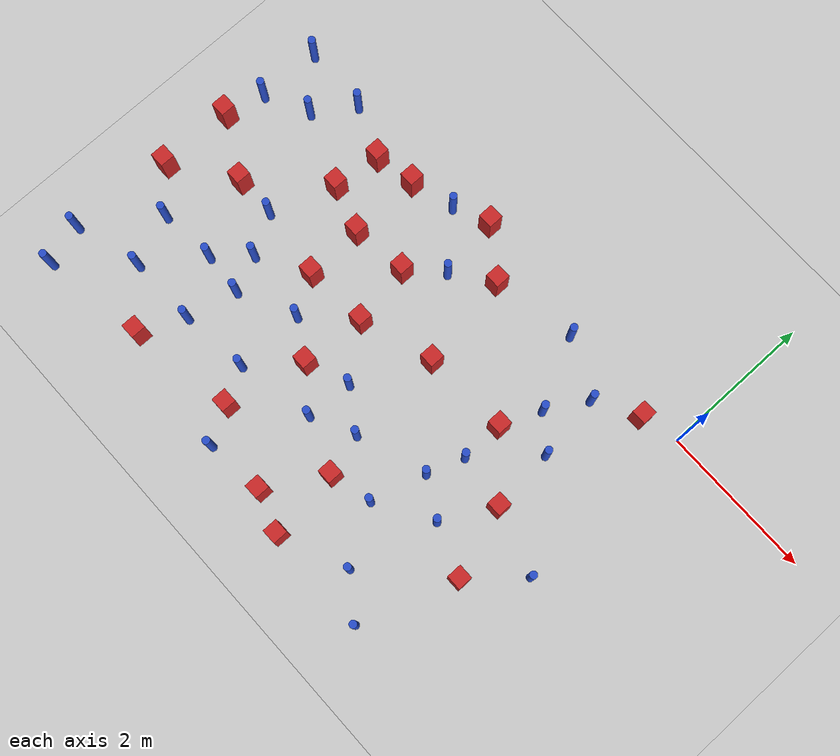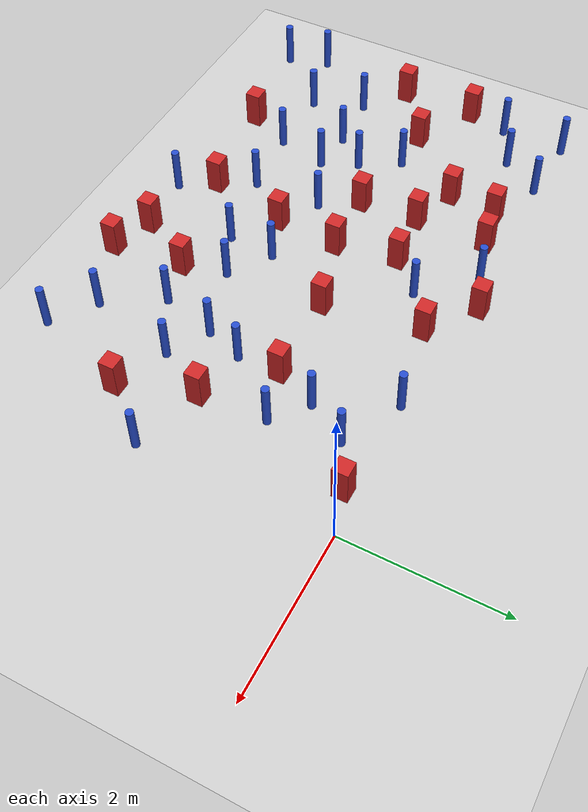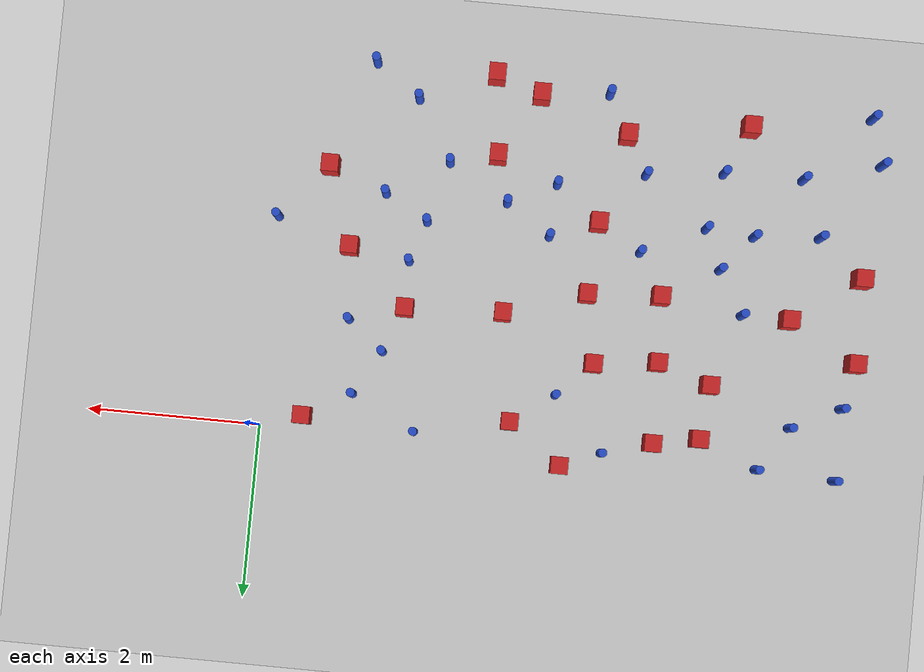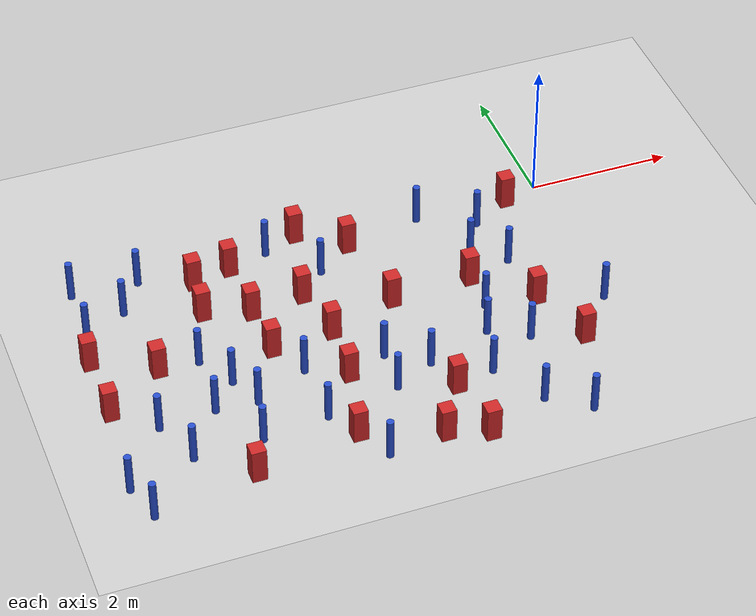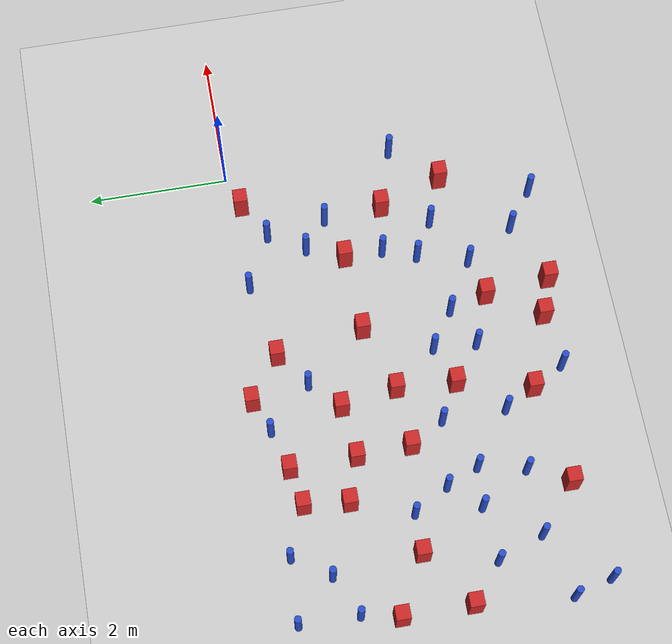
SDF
<sdf version="1.6">
 <world name="default">
  <model name="ground_plane">
   <static>1</static>
   <link name="link">
    <collision name="collision">
     <geometry><plane><normal>0 0 1</normal><size>100 100</size></plane></geometry>
     <surface><friction><ode><mu>100</mu><mu2>50</mu2></ode></friction></surface>
    </collision>
    <visual name="visual">
     <cast_shadows>0</cast_shadows>
     <geometry><plane><normal>0 0 1</normal><size>100 100</size></plane></geometry>
     <material>
      <ambient>1.0 1.0 1.0 1.0</ambient>
      <diffuse>0.8 0.8 0.8 1.0</diffuse>
      <specular>0.01 0.01 0.01 1.000000</specular>
     </material>
    </visual>
   </link>
  </model>
  <model name="square_post_obstacle1">
   <static>true</static>
   <pose>-0.557334798175 -3.08272760318 8.22691968438e-08 7.2212513382e-06 -7.54495500217e-07 2.29674213826e-05</pose>
   <link name="link">
    <pose>0 0 0.25 0 -0 0</pose>
    <inertial>
     <mass>100</mass>
     <inertia>
      <ixx>0.166667</ixx>
      <ixy>0</ixy>
      <ixz>0</ixz>
      <iyy>0.166667</iyy>
      <iyz>0</iyz>
      <izz>0.166667</izz>
     </inertia>
    </inertial>
    <collision name="collision"><geometry><box><size>.2 .2 .5</size></box></geometry></collision>
    <visual name="visual">
     <geometry><box><size>.2 .2 .5</size></box></geometry>
     <material>
      <script><name>Gazebo/Red</name><uri>file://media/materials/scripts/gazebo.material</uri></script>
     </material>
    </visual>
   </link>
  </model>
  <model name="pole_obstacle3">
   <static>true</static>
   <pose>-5.79340211494 -0.0211632586068 2.88873142074e-08 -9.90536690003e-09 4.60219948985e-07 -1.20965994965e-07</pose>
   <link name="link">
    <pose>0 0 0.3 0 -0 0</pose>
    <inertial>
     <mass>1</mass>
     <inertia><ixx>0.145833</ixx><ixy>0</ixy><ixz>0</ixz><iyy>0.145833</iyy><iyz>0</iyz><izz>0.125</izz></inertia>
    </inertial>
    <collision name="collision">
     <geometry><cylinder><radius>0.05</radius><length>.6</length></cylinder></geometry>
    </collision>
    <visual name="visual">
     <geometry><cylinder><radius>0.05</radius><length>.6</length></cylinder></geometry>
     <material>
      <script><name>Gazebo/Blue</name><uri>file://media/materials/scripts/gazebo.material</uri></script>
     </material>
    </visual>
   </link>
  </model>
  <model name="square_post_obstacle4">
   <static>true</static>
   <pose>-3.66328525411 -1.86673126845 8.22691968438e-08 7.2212513382e-06 -7.54495500217e-07 2.29674213826e-05</pose>
   <link name="link">
    <pose>0 0 0.25 0 -0 0</pose>
    <inertial>
     <mass>100</mass>
     <inertia>
      <ixx>0.166667</ixx>
      <ixy>0</ixy>
      <ixz>0</ixz>
      <iyy>0.166667</iyy>
      <iyz>0</iyz>
      <izz>0.166667</izz>
     </inertia>
    </inertial>
    <collision name="collision"><geometry><box><size>.2 .2 .5</size></box></geometry></collision>
    <visual name="visual">
     <geometry><box><size>.2 .2 .5</size></box></geometry>
     <material>
      <script><name>Gazebo/Red</name><uri>file://media/materials/scripts/gazebo.material</uri></script>
     </material>
    </visual>
   </link>
  </model>
  <model name="pole_obstacle7">
   <static>true</static>
   <pose>-1.73216548762 -2.53938346659 2.88873142074e-08 -9.90536689791e-09 4.6021994899e-07 -1.20965994959e-07</pose>
   <link name="link">
    <pose>0 0 0.3 0 -0 0</pose>
    <inertial>
     <mass>1</mass>
     <inertia><ixx>0.145833</ixx><ixy>0</ixy><ixz>0</ixz><iyy>0.145833</iyy><iyz>0</iyz><izz>0.125</izz></inertia>
    </inertial>
    <collision name="collision">
     <geometry><cylinder><radius>0.05</radius><length>.6</length></cylinder></geometry>
    </collision>
    <visual name="visual">
     <geometry><cylinder><radius>0.05</radius><length>.6</length></cylinder></geometry>
     <material>
      <script><name>Gazebo/Blue</name><uri>file://media/materials/scripts/gazebo.material</uri></script>
     </material>
    </visual>
   </link>
  </model>
  <model name="square_post_obstacle13">
   <static>true</static>
   <pose>-5.16516771168 -0.941225896846 8.22691968438e-08 7.2212513382e-06 -7.54495500217e-07 2.29674213826e-05</pose>
   <link name="link">
    <pose>0 0 0.25 0 -0 0</pose>
    <inertial>
     <mass>100</mass>
     <inertia>
      <ixx>0.166667</ixx>
      <ixy>0</ixy>
      <ixz>0</ixz>
      <iyy>0.166667</iyy>
      <iyz>0</iyz>
      <izz>0.166667</izz>
     </inertia>
    </inertial>
    <collision name="collision"><geometry><box><size>.2 .2 .5</size></box></geometry></collision>
    <visual name="visual">
     <geometry><box><size>.2 .2 .5</size></box></geometry>
     <material>
      <script><name>Gazebo/Red</name><uri>file://media/materials/scripts/gazebo.material</uri></script>
     </material>
    </visual>
   </link>
  </model>
  <model name="pole_obstacle8">
   <static>true</static>
   <pose>-1.50866007726 -3.9638408501 2.88873142074e-08 -9.90536689586e-09 4.60219948995e-07 -1.20965994956e-07</pose>
   <link name="link">
    <pose>0 0 0.3 0 -0 0</pose>
    <inertial>
     <mass>1</mass>
     <inertia><ixx>0.145833</ixx><ixy>0</ixy><ixz>0</ixz><iyy>0.145833</iyy><iyz>0</iyz><izz>0.125</izz></inertia>
    </inertial>
    <collision name="collision">
     <geometry><cylinder><radius>0.05</radius><length>.6</length></cylinder></geometry>
    </collision>
    <visual name="visual">
     <geometry><cylinder><radius>0.05</radius><length>.6</length></cylinder></geometry>
     <material>
      <script><name>Gazebo/Blue</name><uri>file://media/materials/scripts/gazebo.material</uri></script>
     </material>
    </visual>
   </link>
  </model>
  <model name="square_post_obstacle18">
   <static>true</static>
   <pose>-2.48513393565 -3.38515843492 8.22691968438e-08 7.2212513382e-06 -7.54495500217e-07 2.29674213826e-05</pose>
   <link name="link">
    <pose>0 0 0.25 0 -0 0</pose>
    <inertial>
     <mass>100</mass>
     <inertia>
      <ixx>0.166667</ixx>
      <ixy>0</ixy>
      <ixz>0</ixz>
      <iyy>0.166667</iyy>
      <iyz>0</iyz>
      <izz>0.166667</izz>
     </inertia>
    </inertial>
    <collision name="collision"><geometry><box><size>.2 .2 .5</size></box></geometry></collision>
    <visual name="visual">
     <geometry><box><size>.2 .2 .5</size></box></geometry>
     <material>
      <script><name>Gazebo/Red</name><uri>file://media/materials/scripts/gazebo.material</uri></script>
     </material>
    </visual>
   </link>
  </model>
  <model name="pole_obstacle11">
   <static>true</static>
   <pose>-0.933882481719 -1.32267744206 2.88873142074e-08 -9.90536689855e-09 4.60219948989e-07 -1.20965994962e-07</pose>
   <link name="link">
    <pose>0 0 0.3 0 -0 0</pose>
    <inertial>
     <mass>1</mass>
     <inertia><ixx>0.145833</ixx><ixy>0</ixy><ixz>0</ixz><iyy>0.145833</iyy><iyz>0</iyz><izz>0.125</izz></inertia>
    </inertial>
    <collision name="collision">
     <geometry><cylinder><radius>0.05</radius><length>.6</length></cylinder></geometry>
    </collision>
    <visual name="visual">
     <geometry><cylinder><radius>0.05</radius><length>.6</length></cylinder></geometry>
     <material>
      <script><name>Gazebo/Blue</name><uri>file://media/materials/scripts/gazebo.material</uri></script>
     </material>
    </visual>
   </link>
  </model>
  <model name="pole_obstacle25">
   <static>true</static>
   <pose>-6.79087956098 -4.21431185535 2.88873142074e-08 -9.90536690842e-09 4.60219948965e-07 -1.20965994976e-07</pose>
   <link name="link">
    <pose>0 0 0.3 0 -0 0</pose>
    <inertial>
     <mass>1</mass>
     <inertia><ixx>0.145833</ixx><ixy>0</ixy><ixz>0</ixz><iyy>0.145833</iyy><iyz>0</iyz><izz>0.125</izz></inertia>
    </inertial>
    <collision name="collision">
     <geometry><cylinder><radius>0.05</radius><length>.6</length></cylinder></geometry>
    </collision>
    <visual name="visual">
     <geometry><cylinder><radius>0.05</radius><length>.6</length></cylinder></geometry>
     <material>
      <script><name>Gazebo/Blue</name><uri>file://media/materials/scripts/gazebo.material</uri></script>
     </material>
    </visual>
   </link>
  </model>
  <model name="pole_obstacle27">
   <static>true</static>
   <pose>-5.17617299652 -2.29358362439 2.88873142074e-08 -9.90536690245e-09 4.6021994898e-07 -1.20965994966e-07</pose>
   <link name="link">
    <pose>0 0 0.3 0 -0 0</pose>
    <inertial>
     <mass>1</mass>
     <inertia><ixx>0.145833</ixx><ixy>0</ixy><ixz>0</ixz><iyy>0.145833</iyy><iyz>0</iyz><izz>0.125</izz></inertia>
    </inertial>
    <collision name="collision">
     <geometry><cylinder><radius>0.05</radius><length>.6</length></cylinder></geometry>
    </collision>
    <visual name="visual">
     <geometry><cylinder><radius>0.05</radius><length>.6</length></cylinder></geometry>
     <material>
      <script><name>Gazebo/Blue</name><uri>file://media/materials/scripts/gazebo.material</uri></script>
     </material>
    </visual>
   </link>
  </model>
  <model name="pole_obstacle30">
   <static>true</static>
   <pose>-6.71576771342 -0.81321255407 2.88873142074e-08 -9.90536689837e-09 4.60219948989e-07 -1.2096599496e-07</pose>
   <link name="link">
    <pose>0 0 0.3 0 -0 0</pose>
    <inertial>
     <mass>1</mass>
     <inertia><ixx>0.145833</ixx><ixy>0</ixy><ixz>0</ixz><iyy>0.145833</iyy><iyz>0</iyz><izz>0.125</izz></inertia>
    </inertial>
    <collision name="collision">
     <geometry><cylinder><radius>0.05</radius><length>.6</length></cylinder></geometry>
    </collision>
    <visual name="visual">
     <geometry><cylinder><radius>0.05</radius><length>.6</length></cylinder></geometry>
     <material>
      <script><name>Gazebo/Blue</name><uri>file://media/materials/scripts/gazebo.material</uri></script>
     </material>
    </visual>
   </link>
  </model>
  <model name="square_post_obstacle39">
   <static>true</static>
   <pose>-2.38749320823 -4.31851192225 8.22691968438e-08 7.2212513382e-06 -7.54495500217e-07 2.29674213826e-05</pose>
   <link name="link">
    <pose>0 0 0.25 0 -0 0</pose>
    <inertial>
     <mass>100</mass>
     <inertia>
      <ixx>0.166667</ixx>
      <ixy>0</ixy>
      <ixz>0</ixz>
      <iyy>0.166667</iyy>
      <iyz>0</iyz>
      <izz>0.166667</izz>
     </inertia>
    </inertial>
    <collision name="collision"><geometry><box><size>.2 .2 .5</size></box></geometry></collision>
    <visual name="visual">
     <geometry><box><size>.2 .2 .5</size></box></geometry>
     <material>
      <script><name>Gazebo/Red</name><uri>file://media/materials/scripts/gazebo.material</uri></script>
     </material>
    </visual>
   </link>
  </model>
  <model name="pole_obstacle42">
   <static>true</static>
   <pose>-5.47425082224 -1.78958168003 2.88873142074e-08 -9.90536689445e-09 4.60219948999e-07 -1.20965994956e-07</pose>
   <link name="link">
    <pose>0 0 0.3 0 -0 0</pose>
    <inertial>
     <mass>1</mass>
     <inertia><ixx>0.145833</ixx><ixy>0</ixy><ixz>0</ixz><iyy>0.145833</iyy><iyz>0</iyz><izz>0.125</izz></inertia>
    </inertial>
    <collision name="collision">
     <geometry><cylinder><radius>0.05</radius><length>.6</length></cylinder></geometry>
    </collision>
    <visual name="visual">
     <geometry><cylinder><radius>0.05</radius><length>.6</length></cylinder></geometry>
     <material>
      <script><name>Gazebo/Blue</name><uri>file://media/materials/scripts/gazebo.material</uri></script>
     </material>
    </visual>
   </link>
  </model>
  <model name="square_post_obstacle40">
   <static>true</static>
   <pose>-4.54519862014 -1.14823949798 8.22691968438e-08 7.2212513382e-06 -7.54495500217e-07 2.29674213826e-05</pose>
   <link name="link">
    <pose>0 0 0.25 0 -0 0</pose>
    <inertial>
     <mass>100</mass>
     <inertia>
      <ixx>0.166667</ixx>
      <ixy>0</ixy>
      <ixz>0</ixz>
      <iyy>0.166667</iyy>
      <iyz>0</iyz>
      <izz>0.166667</izz>
     </inertia>
    </inertial>
    <collision name="collision"><geometry><box><size>.2 .2 .5</size></box></geometry></collision>
    <visual name="visual">
     <geometry><box><size>.2 .2 .5</size></box></geometry>
     <material>
      <script><name>Gazebo/Red</name><uri>file://media/materials/scripts/gazebo.material</uri></script>
     </material>
    </visual>
   </link>
  </model>
  <model name="pole_obstacle45">
   <static>true</static>
   <pose>-1.05352468979 -0.463271751504 2.88873142074e-08 -9.90536689816e-09 4.6021994899e-07 -1.2096599496e-07</pose>
   <link name="link">
    <pose>0 0 0.3 0 -0 0</pose>
    <inertial>
     <mass>1</mass>
     <inertia><ixx>0.145833</ixx><ixy>0</ixy><ixz>0</ixz><iyy>0.145833</iyy><iyz>0</iyz><izz>0.125</izz></inertia>
    </inertial>
    <collision name="collision">
     <geometry><cylinder><radius>0.05</radius><length>.6</length></cylinder></geometry>
    </collision>
    <visual name="visual">
     <geometry><cylinder><radius>0.05</radius><length>.6</length></cylinder></geometry>
     <material>
      <script><name>Gazebo/Blue</name><uri>file://media/materials/scripts/gazebo.material</uri></script>
     </material>
    </visual>
   </link>
  </model>
  <model name="square_post_obstacle44">
   <static>true</static>
   <pose>-2.9006235229 -0.307369105008 8.22691968438e-08 7.2212513382e-06 -7.54495500217e-07 2.29674213826e-05</pose>
   <link name="link">
    <pose>0 0 0.25 0 -0 0</pose>
    <inertial>
     <mass>100</mass>
     <inertia>
      <ixx>0.166667</ixx>
      <ixy>0</ixy>
      <ixz>0</ixz>
      <iyy>0.166667</iyy>
      <iyz>0</iyz>
      <izz>0.166667</izz>
     </inertia>
    </inertial>
    <collision name="collision"><geometry><box><size>.2 .2 .5</size></box></geometry></collision>
    <visual name="visual">
     <geometry><box><size>.2 .2 .5</size></box></geometry>
     <material>
      <script><name>Gazebo/Red</name><uri>file://media/materials/scripts/gazebo.material</uri></script>
     </material>
    </visual>
   </link>
  </model>
  <model name="pole_obstacle62">
   <static>true</static>
   <pose>-1.22507534285 -2.82603380804 2.88873142074e-08 -9.90536689791e-09 4.6021994899e-07 -1.20965994959e-07</pose>
   <link name="link">
    <pose>0 0 0.3 0 -0 0</pose>
    <inertial>
     <mass>1</mass>
     <inertia><ixx>0.145833</ixx><ixy>0</ixy><ixz>0</ixz><iyy>0.145833</iyy><iyz>0</iyz><izz>0.125</izz></inertia>
    </inertial>
    <collision name="collision">
     <geometry><cylinder><radius>0.05</radius><length>.6</length></cylinder></geometry>
    </collision>
    <visual name="visual">
     <geometry><cylinder><radius>0.05</radius><length>.6</length></cylinder></geometry>
     <material>
      <script><name>Gazebo/Blue</name><uri>file://media/materials/scripts/gazebo.material</uri></script>
     </material>
    </visual>
   </link>
  </model>
  <model name="pole_obstacle63">
   <static>true</static>
   <pose>-2.64184245672 -2.84743970709 2.88873142074e-08 -9.90536690232e-09 4.6021994898e-07 -1.20965994968e-07</pose>
   <link name="link">
    <pose>0 0 0.3 0 -0 0</pose>
    <inertial>
     <mass>1</mass>
     <inertia><ixx>0.145833</ixx><ixy>0</ixy><ixz>0</ixz><iyy>0.145833</iyy><iyz>0</iyz><izz>0.125</izz></inertia>
    </inertial>
    <collision name="collision">
     <geometry><cylinder><radius>0.05</radius><length>.6</length></cylinder></geometry>
    </collision>
    <visual name="visual">
     <geometry><cylinder><radius>0.05</radius><length>.6</length></cylinder></geometry>
     <material>
      <script><name>Gazebo/Blue</name><uri>file://media/materials/scripts/gazebo.material</uri></script>
     </material>
    </visual>
   </link>
  </model>
  <model name="square_post_obstacle68">
   <static>true</static>
   <pose>-5.0982100184 -0.310912671114 8.22691968438e-08 7.2212513382e-06 -7.54495500217e-07 2.29674213826e-05</pose>
   <link name="link">
    <pose>0 0 0.25 0 -0 0</pose>
    <inertial>
     <mass>100</mass>
     <inertia>
      <ixx>0.166667</ixx>
      <ixy>0</ixy>
      <ixz>0</ixz>
      <iyy>0.166667</iyy>
      <iyz>0</iyz>
      <izz>0.166667</izz>
     </inertia>
    </inertial>
    <collision name="collision"><geometry><box><size>.2 .2 .5</size></box></geometry></collision>
    <visual name="visual">
     <geometry><box><size>.2 .2 .5</size></box></geometry>
     <material>
      <script><name>Gazebo/Red</name><uri>file://media/materials/scripts/gazebo.material</uri></script>
     </material>
    </visual>
   </link>
  </model>
  <model name="pole_obstacle68">
   <static>true</static>
   <pose>-3.98958934895 -0.0448235168982 2.88873142074e-08 -9.90536687596e-09 4.60219949041e-07 -1.20965994939e-07</pose>
   <link name="link">
    <pose>0 0 0.3 0 -0 0</pose>
    <inertial>
     <mass>1</mass>
     <inertia><ixx>0.145833</ixx><ixy>0</ixy><ixz>0</ixz><iyy>0.145833</iyy><iyz>0</iyz><izz>0.125</izz></inertia>
    </inertial>
    <collision name="collision">
     <geometry><cylinder><radius>0.05</radius><length>.6</length></cylinder></geometry>
    </collision>
    <visual name="visual">
     <geometry><cylinder><radius>0.05</radius><length>.6</length></cylinder></geometry>
     <material>
      <script><name>Gazebo/Blue</name><uri>file://media/materials/scripts/gazebo.material</uri></script>
     </material>
    </visual>
   </link>
  </model>
  <model name="square_post_obstacle76">
   <static>true</static>
   <pose>-4.51403401809 -1.91826936203 8.22691968438e-08 7.22125133819e-06 -7.54495500217e-07 2.29674213826e-05</pose>
   <link name="link">
    <pose>0 0 0.25 0 -0 0</pose>
    <inertial>
     <mass>100</mass>
     <inertia>
      <ixx>0.166667</ixx>
      <ixy>0</ixy>
      <ixz>0</ixz>
      <iyy>0.166667</iyy>
      <iyz>0</iyz>
      <izz>0.166667</izz>
     </inertia>
    </inertial>
    <collision name="collision"><geometry><box><size>.2 .2 .5</size></box></geometry></collision>
    <visual name="visual">
     <geometry><box><size>.2 .2 .5</size></box></geometry>
     <material>
      <script><name>Gazebo/Red</name><uri>file://media/materials/scripts/gazebo.material</uri></script>
     </material>
    </visual>
   </link>
  </model>
  <model name="pole_obstacle74">
   <static>true</static>
   <pose>-1.35297878191 -0.981391345299 2.88873142074e-08 -9.90536689879e-09 4.60219948988e-07 -1.20965994961e-07</pose>
   <link name="link">
    <pose>0 0 0.3 0 -0 0</pose>
    <inertial>
     <mass>1</mass>
     <inertia><ixx>0.145833</ixx><ixy>0</ixy><ixz>0</ixz><iyy>0.145833</iyy><iyz>0</iyz><izz>0.125</izz></inertia>
    </inertial>
    <collision name="collision">
     <geometry><cylinder><radius>0.05</radius><length>.6</length></cylinder></geometry>
    </collision>
    <visual name="visual">
     <geometry><cylinder><radius>0.05</radius><length>.6</length></cylinder></geometry>
     <material>
      <script><name>Gazebo/Blue</name><uri>file://media/materials/scripts/gazebo.material</uri></script>
     </material>
    </visual>
   </link>
  </model>
  <model name="pole_obstacle78">
   <static>true</static>
   <pose>-6.13635708358 -0.536352926298 2.88873142074e-08 -9.90536689968e-09 4.60219948986e-07 -1.20965994963e-07</pose>
   <link name="link">
    <pose>0 0 0.3 0 -0 0</pose>
    <inertial>
     <mass>1</mass>
     <inertia><ixx>0.145833</ixx><ixy>0</ixy><ixz>0</ixz><iyy>0.145833</iyy><iyz>0</iyz><izz>0.125</izz></inertia>
    </inertial>
    <collision name="collision">
     <geometry><cylinder><radius>0.05</radius><length>.6</length></cylinder></geometry>
    </collision>
    <visual name="visual">
     <geometry><cylinder><radius>0.05</radius><length>.6</length></cylinder></geometry>
     <material>
      <script><name>Gazebo/Blue</name><uri>file://media/materials/scripts/gazebo.material</uri></script>
     </material>
    </visual>
   </link>
  </model>
  <model name="pole_obstacle90">
   <static>true</static>
   <pose>-4.23481060397 -2.41242656305 2.88873142074e-08 -9.90536690245e-09 4.6021994898e-07 -1.20965994966e-07</pose>
   <link name="link">
    <pose>0 0 0.3 0 -0 0</pose>
    <inertial>
     <mass>1</mass>
     <inertia><ixx>0.145833</ixx><ixy>0</ixy><ixz>0</ixz><iyy>0.145833</iyy><iyz>0</iyz><izz>0.125</izz></inertia>
    </inertial>
    <collision name="collision">
     <geometry><cylinder><radius>0.05</radius><length>.6</length></cylinder></geometry>
    </collision>
    <visual name="visual">
     <geometry><cylinder><radius>0.05</radius><length>.6</length></cylinder></geometry>
     <material>
      <script><name>Gazebo/Blue</name><uri>file://media/materials/scripts/gazebo.material</uri></script>
     </material>
    </visual>
   </link>
  </model>
  <model name="pole_obstacle92">
   <static>true</static>
   <pose>-6.94735927483 -3.67951070838 2.88873142074e-08 -9.90536690245e-09 4.6021994898e-07 -1.20965994966e-07</pose>
   <link name="link">
    <pose>0 0 0.3 0 -0 0</pose>
    <inertial>
     <mass>1</mass>
     <inertia><ixx>0.145833</ixx><ixy>0</ixy><ixz>0</ixz><iyy>0.145833</iyy><iyz>0</iyz><izz>0.125</izz></inertia>
    </inertial>
    <collision name="collision">
     <geometry><cylinder><radius>0.05</radius><length>.6</length></cylinder></geometry>
    </collision>
    <visual name="visual">
     <geometry><cylinder><radius>0.05</radius><length>.6</length></cylinder></geometry>
     <material>
      <script><name>Gazebo/Blue</name><uri>file://media/materials/scripts/gazebo.material</uri></script>
     </material>
    </visual>
   </link>
  </model>
  <model name="pole_obstacle93">
   <static>true</static>
   <pose>-0.0023775373005 -2.44407386912 2.88873142074e-08 -9.90536689491e-09 4.60219948997e-07 -1.20965994954e-07</pose>
   <link name="link">
    <pose>0 0 0.3 0 -0 0</pose>
    <inertial>
     <mass>1</mass>
     <inertia><ixx>0.145833</ixx><ixy>0</ixy><ixz>0</ixz><iyy>0.145833</iyy><iyz>0</iyz><izz>0.125</izz></inertia>
    </inertial>
    <collision name="collision">
     <geometry><cylinder><radius>0.05</radius><length>.6</length></cylinder></geometry>
    </collision>
    <visual name="visual">
     <geometry><cylinder><radius>0.05</radius><length>.6</length></cylinder></geometry>
     <material>
      <script><name>Gazebo/Blue</name><uri>file://media/materials/scripts/gazebo.material</uri></script>
     </material>
    </visual>
   </link>
  </model>
  <model name="pole_obstacle98">
   <static>true</static>
   <pose>-4.97488637153 -2.75681319711 2.88873142074e-08 -9.90536690245e-09 4.6021994898e-07 -1.20965994966e-07</pose>
   <link name="link">
    <pose>0 0 0.3 0 -0 0</pose>
    <inertial>
     <mass>1</mass>
     <inertia><ixx>0.145833</ixx><ixy>0</ixy><ixz>0</ixz><iyy>0.145833</iyy><iyz>0</iyz><izz>0.125</izz></inertia>
    </inertial>
    <collision name="collision">
     <geometry><cylinder><radius>0.05</radius><length>.6</length></cylinder></geometry>
    </collision>
    <visual name="visual">
     <geometry><cylinder><radius>0.05</radius><length>.6</length></cylinder></geometry>
     <material>
      <script><name>Gazebo/Blue</name><uri>file://media/materials/scripts/gazebo.material</uri></script>
     </material>
    </visual>
   </link>
  </model>
  <model name="pole_obstacle103">
   <static>true</static>
   <pose>-5.53806756953 -2.71326206359 2.88873142074e-08 -9.90536690245e-09 4.6021994898e-07 -1.20965994966e-07</pose>
   <link name="link">
    <pose>0 0 0.3 0 -0 0</pose>
    <inertial>
     <mass>1</mass>
     <inertia><ixx>0.145833</ixx><ixy>0</ixy><ixz>0</ixz><iyy>0.145833</iyy><iyz>0</iyz><izz>0.125</izz></inertia>
    </inertial>
    <collision name="collision">
     <geometry><cylinder><radius>0.05</radius><length>.6</length></cylinder></geometry>
    </collision>
    <visual name="visual">
     <geometry><cylinder><radius>0.05</radius><length>.6</length></cylinder></geometry>
     <material>
      <script><name>Gazebo/Blue</name><uri>file://media/materials/scripts/gazebo.material</uri></script>
     </material>
    </visual>
   </link>
  </model>
  <model name="pole_obstacle108">
   <static>true</static>
   <pose>-4.22188376828 -3.32014860063 2.88873142074e-08 -9.90536690245e-09 4.6021994898e-07 -1.20965994966e-07</pose>
   <link name="link">
    <pose>0 0 0.3 0 -0 0</pose>
    <inertial>
     <mass>1</mass>
     <inertia><ixx>0.145833</ixx><ixy>0</ixy><ixz>0</ixz><iyy>0.145833</iyy><iyz>0</iyz><izz>0.125</izz></inertia>
    </inertial>
    <collision name="collision">
     <geometry><cylinder><radius>0.05</radius><length>.6</length></cylinder></geometry>
    </collision>
    <visual name="visual">
     <geometry><cylinder><radius>0.05</radius><length>.6</length></cylinder></geometry>
     <material>
      <script><name>Gazebo/Blue</name><uri>file://media/materials/scripts/gazebo.material</uri></script>
     </material>
    </visual>
   </link>
  </model>
  <model name="square_post_obstacle98">
   <static>true</static>
   <pose>-0.507067521289 -0.158723331687 8.22691968438e-08 7.2212513382e-06 -7.54495500217e-07 2.29674213826e-05</pose>
   <link name="link">
    <pose>0 0 0.25 0 -0 0</pose>
    <inertial>
     <mass>100</mass>
     <inertia>
      <ixx>0.166667</ixx>
      <ixy>0</ixy>
      <ixz>0</ixz>
      <iyy>0.166667</iyy>
      <iyz>0</iyz>
      <izz>0.166667</izz>
     </inertia>
    </inertial>
    <collision name="collision"><geometry><box><size>.2 .2 .5</size></box></geometry></collision>
    <visual name="visual">
     <geometry><box><size>.2 .2 .5</size></box></geometry>
     <material>
      <script><name>Gazebo/Red</name><uri>file://media/materials/scripts/gazebo.material</uri></script>
     </material>
    </visual>
   </link>
  </model>
  <model name="pole_obstacle110">
   <static>true</static>
   <pose>-3.71933847198 -4.22281411467 2.88873142074e-08 -9.90536692062e-09 4.60219948937e-07 -1.20965994985e-07</pose>
   <link name="link">
    <pose>0 0 0.3 0 -0 0</pose>
    <inertial>
     <mass>1</mass>
     <inertia><ixx>0.145833</ixx><ixy>0</ixy><ixz>0</ixz><iyy>0.145833</iyy><iyz>0</iyz><izz>0.125</izz></inertia>
    </inertial>
    <collision name="collision">
     <geometry><cylinder><radius>0.05</radius><length>.6</length></cylinder></geometry>
    </collision>
    <visual name="visual">
     <geometry><cylinder><radius>0.05</radius><length>.6</length></cylinder></geometry>
     <material>
      <script><name>Gazebo/Blue</name><uri>file://media/materials/scripts/gazebo.material</uri></script>
     </material>
    </visual>
   </link>
  </model>
  <model name="square_post_obstacle115">
   <static>true</static>
   <pose>-3.72056378685 -2.70702718772 8.22691968438e-08 7.2212513382e-06 -7.54495500217e-07 2.29674213826e-05</pose>
   <link name="link">
    <pose>0 0 0.25 0 -0 0</pose>
    <inertial>
     <mass>100</mass>
     <inertia>
      <ixx>0.166667</ixx>
      <ixy>0</ixy>
      <ixz>0</ixz>
      <iyy>0.166667</iyy>
      <iyz>0</iyz>
      <izz>0.166667</izz>
     </inertia>
    </inertial>
    <collision name="collision"><geometry><box><size>.2 .2 .5</size></box></geometry></collision>
    <visual name="visual">
     <geometry><box><size>.2 .2 .5</size></box></geometry>
     <material>
      <script><name>Gazebo/Red</name><uri>file://media/materials/scripts/gazebo.material</uri></script>
     </material>
    </visual>
   </link>
  </model>
  <model name="pole_obstacle134">
   <static>true</static>
   <pose>-1.56536986794 -2.06009606657 2.88873142074e-08 -9.90536689791e-09 4.6021994899e-07 -1.20965994959e-07</pose>
   <link name="link">
    <pose>0 0 0.3 0 -0 0</pose>
    <inertial>
     <mass>1</mass>
     <inertia><ixx>0.145833</ixx><ixy>0</ixy><ixz>0</ixz><iyy>0.145833</iyy><iyz>0</iyz><izz>0.125</izz></inertia>
    </inertial>
    <collision name="collision">
     <geometry><cylinder><radius>0.05</radius><length>.6</length></cylinder></geometry>
    </collision>
    <visual name="visual">
     <geometry><cylinder><radius>0.05</radius><length>.6</length></cylinder></geometry>
     <material>
      <script><name>Gazebo/Blue</name><uri>file://media/materials/scripts/gazebo.material</uri></script>
     </material>
    </visual>
   </link>
  </model>
  <model name="square_post_obstacle118">
   <static>true</static>
   <pose>-5.38462434512 -3.98004787682 8.22691968438e-08 7.2212513382e-06 -7.54495500217e-07 2.29674213826e-05</pose>
   <link name="link">
    <pose>0 0 0.25 0 -0 0</pose>
    <inertial>
     <mass>100</mass>
     <inertia>
      <ixx>0.166667</ixx>
      <ixy>0</ixy>
      <ixz>0</ixz>
      <iyy>0.166667</iyy>
      <iyz>0</iyz>
      <izz>0.166667</izz>
     </inertia>
    </inertial>
    <collision name="collision"><geometry><box><size>.2 .2 .5</size></box></geometry></collision>
    <visual name="visual">
     <geometry><box><size>.2 .2 .5</size></box></geometry>
     <material>
      <script><name>Gazebo/Red</name><uri>file://media/materials/scripts/gazebo.material</uri></script>
     </material>
    </visual>
   </link>
  </model>
  <model name="pole_obstacle140">
   <static>true</static>
   <pose>-3.16533603942 -2.50099025938 2.88873142074e-08 -9.90536690232e-09 4.6021994898e-07 -1.20965994968e-07</pose>
   <link name="link">
    <pose>0 0 0.3 0 -0 0</pose>
    <inertial>
     <mass>1</mass>
     <inertia><ixx>0.145833</ixx><ixy>0</ixy><ixz>0</ixz><iyy>0.145833</iyy><iyz>0</iyz><izz>0.125</izz></inertia>
    </inertial>
    <collision name="collision">
     <geometry><cylinder><radius>0.05</radius><length>.6</length></cylinder></geometry>
    </collision>
    <visual name="visual">
     <geometry><cylinder><radius>0.05</radius><length>.6</length></cylinder></geometry>
     <material>
      <script><name>Gazebo/Blue</name><uri>file://media/materials/scripts/gazebo.material</uri></script>
     </material>
    </visual>
   </link>
  </model>
  <model name="square_post_obstacle129">
   <static>true</static>
   <pose>-6.02129443912 -1.779590781 8.22691968438e-08 7.2212513382e-06 -7.54495500217e-07 2.29674213826e-05</pose>
   <link name="link">
    <pose>0 0 0.25 0 -0 0</pose>
    <inertial>
     <mass>100</mass>
     <inertia>
      <ixx>0.166667</ixx>
      <ixy>0</ixy>
      <ixz>0</ixz>
      <iyy>0.166667</iyy>
      <iyz>0</iyz>
      <izz>0.166667</izz>
     </inertia>
    </inertial>
    <collision name="collision"><geometry><box><size>.2 .2 .5</size></box></geometry></collision>
    <visual name="visual">
     <geometry><box><size>.2 .2 .5</size></box></geometry>
     <material>
      <script><name>Gazebo/Red</name><uri>file://media/materials/scripts/gazebo.material</uri></script>
     </material>
    </visual>
   </link>
  </model>
  <model name="pole_obstacle142">
   <static>true</static>
   <pose>-0.980403988939 -4.34415106666 2.88873142074e-08 -9.90536689644e-09 4.60219948994e-07 -1.20965994957e-07</pose>
   <link name="link">
    <pose>0 0 0.3 0 -0 0</pose>
    <inertial>
     <mass>1</mass>
     <inertia><ixx>0.145833</ixx><ixy>0</ixy><ixz>0</ixz><iyy>0.145833</iyy><iyz>0</iyz><izz>0.125</izz></inertia>
    </inertial>
    <collision name="collision">
     <geometry><cylinder><radius>0.05</radius><length>.6</length></cylinder></geometry>
    </collision>
    <visual name="visual">
     <geometry><cylinder><radius>0.05</radius><length>.6</length></cylinder></geometry>
     <material>
      <script><name>Gazebo/Blue</name><uri>file://media/materials/scripts/gazebo.material</uri></script>
     </material>
    </visual>
   </link>
  </model>
  <model name="square_post_obstacle133">
   <static>true</static>
   <pose>-3.80280747398 -1.06571971139 8.22691968438e-08 7.2212513382e-06 -7.54495500217e-07 2.29674213826e-05</pose>
   <link name="link">
    <pose>0 0 0.25 0 -0 0</pose>
    <inertial>
     <mass>100</mass>
     <inertia>
      <ixx>0.166667</ixx>
      <ixy>0</ixy>
      <ixz>0</ixz>
      <iyy>0.166667</iyy>
      <iyz>0</iyz>
      <izz>0.166667</izz>
     </inertia>
    </inertial>
    <collision name="collision"><geometry><box><size>.2 .2 .5</size></box></geometry></collision>
    <visual name="visual">
     <geometry><box><size>.2 .2 .5</size></box></geometry>
     <material>
      <script><name>Gazebo/Red</name><uri>file://media/materials/scripts/gazebo.material</uri></script>
     </material>
    </visual>
   </link>
  </model>
  <model name="pole_obstacle144">
   <static>true</static>
   <pose>-3.20247687455 -3.114272189 2.88873142074e-08 -9.90536690232e-09 4.6021994898e-07 -1.20965994968e-07</pose>
   <link name="link">
    <pose>0 0 0.3 0 -0 0</pose>
    <inertial>
     <mass>1</mass>
     <inertia><ixx>0.145833</ixx><ixy>0</ixy><ixz>0</ixz><iyy>0.145833</iyy><iyz>0</iyz><izz>0.125</izz></inertia>
    </inertial>
    <collision name="collision">
     <geometry><cylinder><radius>0.05</radius><length>.6</length></cylinder></geometry>
    </collision>
    <visual name="visual">
     <geometry><cylinder><radius>0.05</radius><length>.6</length></cylinder></geometry>
     <material>
      <script><name>Gazebo/Blue</name><uri>file://media/materials/scripts/gazebo.material</uri></script>
     </material>
    </visual>
   </link>
  </model>
  <model name="square_post_obstacle139">
   <static>true</static>
   <pose>-2.70785112148 -1.55977963191 8.22691968438e-08 7.2212513382e-06 -7.54495500217e-07 2.29674213826e-05</pose>
   <link name="link">
    <pose>0 0 0.25 0 -0 0</pose>
    <inertial>
     <mass>100</mass>
     <inertia>
      <ixx>0.166667</ixx>
      <ixy>0</ixy>
      <ixz>0</ixz>
      <iyy>0.166667</iyy>
      <iyz>0</iyz>
      <izz>0.166667</izz>
     </inertia>
    </inertial>
    <collision name="collision"><geometry><box><size>.2 .2 .5</size></box></geometry></collision>
    <visual name="visual">
     <geometry><box><size>.2 .2 .5</size></box></geometry>
     <material>
      <script><name>Gazebo/Red</name><uri>file://media/materials/scripts/gazebo.material</uri></script>
     </material>
    </visual>
   </link>
  </model>
  <model name="pole_obstacle154">
   <static>true</static>
   <pose>-6.30342048654 -2.77290643738 2.88873142074e-08 -9.90536690245e-09 4.6021994898e-07 -1.20965994966e-07</pose>
   <link name="link">
    <pose>0 0 0.3 0 -0 0</pose>
    <inertial>
     <mass>1</mass>
     <inertia><ixx>0.145833</ixx><ixy>0</ixy><ixz>0</ixz><iyy>0.145833</iyy><iyz>0</iyz><izz>0.125</izz></inertia>
    </inertial>
    <collision name="collision">
     <geometry><cylinder><radius>0.05</radius><length>.6</length></cylinder></geometry>
    </collision>
    <visual name="visual">
     <geometry><cylinder><radius>0.05</radius><length>.6</length></cylinder></geometry>
     <material>
      <script><name>Gazebo/Blue</name><uri>file://media/materials/scripts/gazebo.material</uri></script>
     </material>
    </visual>
   </link>
  </model>
  <model name="square_post_obstacle146">
   <static>true</static>
   <pose>-4.56249646331 -0.21192598918 8.22691968438e-08 7.2212513382e-06 -7.54495500217e-07 2.29674213826e-05</pose>
   <link name="link">
    <pose>0 0 0.25 0 -0 0</pose>
    <inertial>
     <mass>100</mass>
     <inertia>
      <ixx>0.166667</ixx>
      <ixy>0</ixy>
      <ixz>0</ixz>
      <iyy>0.166667</iyy>
      <iyz>0</iyz>
      <izz>0.166667</izz>
     </inertia>
    </inertial>
    <collision name="collision"><geometry><box><size>.2 .2 .5</size></box></geometry></collision>
    <visual name="visual">
     <geometry><box><size>.2 .2 .5</size></box></geometry>
     <material>
      <script><name>Gazebo/Red</name><uri>file://media/materials/scripts/gazebo.material</uri></script>
     </material>
    </visual>
   </link>
  </model>
  <model name="pole_obstacle166">
   <static>true</static>
   <pose>-6.05032775223 -3.43295865763 2.88873142074e-08 -9.90536690245e-09 4.6021994898e-07 -1.20965994966e-07</pose>
   <link name="link">
    <pose>0 0 0.3 0 -0 0</pose>
    <inertial>
     <mass>1</mass>
     <inertia><ixx>0.145833</ixx><ixy>0</ixy><ixz>0</ixz><iyy>0.145833</iyy><iyz>0</iyz><izz>0.125</izz></inertia>
    </inertial>
    <collision name="collision">
     <geometry><cylinder><radius>0.05</radius><length>.6</length></cylinder></geometry>
    </collision>
    <visual name="visual">
     <geometry><cylinder><radius>0.05</radius><length>.6</length></cylinder></geometry>
     <material>
      <script><name>Gazebo/Blue</name><uri>file://media/materials/scripts/gazebo.material</uri></script>
     </material>
    </visual>
   </link>
  </model>
  <model name="square_post_obstacle160">
   <static>true</static>
   <pose>-3.5144923368 0.142419434585 8.22691968438e-08 7.2212513382e-06 -7.54495500217e-07 2.29674213826e-05</pose>
   <link name="link">
    <pose>0 0 0.25 0 -0 0</pose>
    <inertial>
     <mass>100</mass>
     <inertia>
      <ixx>0.166667</ixx>
      <ixy>0</ixy>
      <ixz>0</ixz>
      <iyy>0.166667</iyy>
      <iyz>0</iyz>
      <izz>0.166667</izz>
     </inertia>
    </inertial>
    <collision name="collision"><geometry><box><size>.2 .2 .5</size></box></geometry></collision>
    <visual name="visual">
     <geometry><box><size>.2 .2 .5</size></box></geometry>
     <material>
      <script><name>Gazebo/Red</name><uri>file://media/materials/scripts/gazebo.material</uri></script>
     </material>
    </visual>
   </link>
  </model>
  <model name="pole_obstacle174">
   <static>true</static>
   <pose>-1.80382305393 -0.0883158191234 2.88873142074e-08 -9.90536689715e-09 4.60219948992e-07 -1.20965994959e-07</pose>
   <link name="link">
    <pose>0 0 0.3 0 -0 0</pose>
    <inertial>
     <mass>1</mass>
     <inertia><ixx>0.145833</ixx><ixy>0</ixy><ixz>0</ixz><iyy>0.145833</iyy><iyz>0</iyz><izz>0.125</izz></inertia>
    </inertial>
    <collision name="collision">
     <geometry><cylinder><radius>0.05</radius><length>.6</length></cylinder></geometry>
    </collision>
    <visual name="visual">
     <geometry><cylinder><radius>0.05</radius><length>.6</length></cylinder></geometry>
     <material>
      <script><name>Gazebo/Blue</name><uri>file://media/materials/scripts/gazebo.material</uri></script>
     </material>
    </visual>
   </link>
  </model>
  <model name="square_post_obstacle170">
   <static>true</static>
   <pose>-6.82133699356 -2.33018216458 8.22691968438e-08 7.2212513382e-06 -7.54495500217e-07 2.29674213826e-05</pose>
   <link name="link">
    <pose>0 0 0.25 0 -0 0</pose>
    <inertial>
     <mass>100</mass>
     <inertia>
      <ixx>0.166667</ixx>
      <ixy>0</ixy>
      <ixz>0</ixz>
      <iyy>0.166667</iyy>
      <iyz>0</iyz>
      <izz>0.166667</izz>
     </inertia>
    </inertial>
    <collision name="collision"><geometry><box><size>.2 .2 .5</size></box></geometry></collision>
    <visual name="visual">
     <geometry><box><size>.2 .2 .5</size></box></geometry>
     <material>
      <script><name>Gazebo/Red</name><uri>file://media/materials/scripts/gazebo.material</uri></script>
     </material>
    </visual>
   </link>
  </model>
  <model name="pole_obstacle182">
   <static>true</static>
   <pose>-3.40208339922 -0.66761609045 2.88873142074e-08 -9.90536690901e-09 4.60219948964e-07 -1.20965994979e-07</pose>
   <link name="link">
    <pose>0 0 0.3 0 -0 0</pose>
    <inertial>
     <mass>1</mass>
     <inertia><ixx>0.145833</ixx><ixy>0</ixy><ixz>0</ixz><iyy>0.145833</iyy><iyz>0</iyz><izz>0.125</izz></inertia>
    </inertial>
    <collision name="collision">
     <geometry><cylinder><radius>0.05</radius><length>.6</length></cylinder></geometry>
    </collision>
    <visual name="visual">
     <geometry><cylinder><radius>0.05</radius><length>.6</length></cylinder></geometry>
     <material>
      <script><name>Gazebo/Blue</name><uri>file://media/materials/scripts/gazebo.material</uri></script>
     </material>
    </visual>
   </link>
  </model>
  <model name="pole_obstacle185">
   <static>true</static>
   <pose>-6.70215844613 0.0251678696091 2.88873142074e-08 -9.90536689189e-09 4.60219949005e-07 -1.20965994952e-07</pose>
   <link name="link">
    <pose>0 0 0.3 0 -0 0</pose>
    <inertial>
     <mass>1</mass>
     <inertia><ixx>0.145833</ixx><ixy>0</ixy><ixz>0</ixz><iyy>0.145833</iyy><iyz>0</iyz><izz>0.125</izz></inertia>
    </inertial>
    <collision name="collision">
     <geometry><cylinder><radius>0.05</radius><length>.6</length></cylinder></geometry>
    </collision>
    <visual name="visual">
     <geometry><cylinder><radius>0.05</radius><length>.6</length></cylinder></geometry>
     <material>
      <script><name>Gazebo/Blue</name><uri>file://media/materials/scripts/gazebo.material</uri></script>
     </material>
    </visual>
   </link>
  </model>
  <model name="pole_obstacle186">
   <static>true</static>
   <pose>-1.93478648375 -3.25454838965 2.88873142074e-08 -9.90536689791e-09 4.6021994899e-07 -1.20965994959e-07</pose>
   <link name="link">
    <pose>0 0 0.3 0 -0 0</pose>
    <inertial>
     <mass>1</mass>
     <inertia><ixx>0.145833</ixx><ixy>0</ixy><ixz>0</ixz><iyy>0.145833</iyy><iyz>0</iyz><izz>0.125</izz></inertia>
    </inertial>
    <collision name="collision">
     <geometry><cylinder><radius>0.05</radius><length>.6</length></cylinder></geometry>
    </collision>
    <visual name="visual">
     <geometry><cylinder><radius>0.05</radius><length>.6</length></cylinder></geometry>
     <material>
      <script><name>Gazebo/Blue</name><uri>file://media/materials/scripts/gazebo.material</uri></script>
     </material>
    </visual>
   </link>
  </model>
  <model name="square_post_obstacle184">
   <static>true</static>
   <pose>-6.82513875553 -1.34243008261 8.22691968438e-08 7.2212513382e-06 -7.54495500217e-07 2.29674213826e-05</pose>
   <link name="link">
    <pose>0 0 0.25 0 -0 0</pose>
    <inertial>
     <mass>100</mass>
     <inertia>
      <ixx>0.166667</ixx>
      <ixy>0</ixy>
      <ixz>0</ixz>
      <iyy>0.166667</iyy>
      <iyz>0</iyz>
      <izz>0.166667</izz>
     </inertia>
    </inertial>
    <collision name="collision"><geometry><box><size>.2 .2 .5</size></box></geometry></collision>
    <visual name="visual">
     <geometry><box><size>.2 .2 .5</size></box></geometry>
     <material>
      <script><name>Gazebo/Red</name><uri>file://media/materials/scripts/gazebo.material</uri></script>
     </material>
    </visual>
   </link>
  </model>
  <model name="square_post_obstacle188">
   <static>true</static>
   <pose>-1.57141387698 -1.5075583019 8.22691968438e-08 7.2212513382e-06 -7.54495500217e-07 2.29674213826e-05</pose>
   <link name="link">
    <pose>0 0 0.25 0 -0 0</pose>
    <inertial>
     <mass>100</mass>
     <inertia>
      <ixx>0.166667</ixx>
      <ixy>0</ixy>
      <ixz>0</ixz>
      <iyy>0.166667</iyy>
      <iyz>0</iyz>
      <izz>0.166667</izz>
     </inertia>
    </inertial>
    <collision name="collision"><geometry><box><size>.2 .2 .5</size></box></geometry></collision>
    <visual name="visual">
     <geometry><box><size>.2 .2 .5</size></box></geometry>
     <material>
      <script><name>Gazebo/Red</name><uri>file://media/materials/scripts/gazebo.material</uri></script>
     </material>
    </visual>
   </link>
  </model>
  <model name="square_post_obstacle191">
   <static>true</static>
   <pose>-3.96912319819 -3.75873621706 8.22691968438e-08 7.2212513382e-06 -7.54495500217e-07 2.29674213826e-05</pose>
   <link name="link">
    <pose>0 0 0.25 0 -0 0</pose>
    <inertial>
     <mass>100</mass>
     <inertia>
      <ixx>0.166667</ixx>
      <ixy>0</ixy>
      <ixz>0</ixz>
      <iyy>0.166667</iyy>
      <iyz>0</iyz>
      <izz>0.166667</izz>
     </inertia>
    </inertial>
    <collision name="collision"><geometry><box><size>.2 .2 .5</size></box></geometry></collision>
    <visual name="visual">
     <geometry><box><size>.2 .2 .5</size></box></geometry>
     <material>
      <script><name>Gazebo/Red</name><uri>file://media/materials/scripts/gazebo.material</uri></script>
     </material>
    </visual>
   </link>
  </model>
  <model name="square_post_obstacle205">
   <static>true</static>
   <pose>-0.868482787824 -2.16553890914 8.22691968438e-08 7.2212513382e-06 -7.54495500217e-07 2.29674213826e-05</pose>
   <link name="link">
    <pose>0 0 0.25 0 -0 0</pose>
    <inertial>
     <mass>100</mass>
     <inertia>
      <ixx>0.166667</ixx>
      <ixy>0</ixy>
      <ixz>0</ixz>
      <iyy>0.166667</iyy>
      <iyz>0</iyz>
      <izz>0.166667</izz>
     </inertia>
    </inertial>
    <collision name="collision"><geometry><box><size>.2 .2 .5</size></box></geometry></collision>
    <visual name="visual">
     <geometry><box><size>.2 .2 .5</size></box></geometry>
     <material>
      <script><name>Gazebo/Red</name><uri>file://media/materials/scripts/gazebo.material</uri></script>
     </material>
    </visual>
   </link>
  </model>
  <model name="pole_obstacle205">
   <static>true</static>
   <pose>-5.12356487144 -3.4172545219 2.88873142074e-08 -9.90536690245e-09 4.6021994898e-07 -1.20965994966e-07</pose>
   <link name="link">
    <pose>0 0 0.3 0 -0 0</pose>
    <inertial>
     <mass>1</mass>
     <inertia><ixx>0.145833</ixx><ixy>0</ixy><ixz>0</ixz><iyy>0.145833</iyy><iyz>0</iyz><izz>0.125</izz></inertia>
    </inertial>
    <collision name="collision">
     <geometry><cylinder><radius>0.05</radius><length>.6</length></cylinder></geometry>
    </collision>
    <visual name="visual">
     <geometry><cylinder><radius>0.05</radius><length>.6</length></cylinder></geometry>
     <material>
      <script><name>Gazebo/Blue</name><uri>file://media/materials/scripts/gazebo.material</uri></script>
     </material>
    </visual>
   </link>
  </model>
  <model name="square_post_obstacle214">
   <static>true</static>
   <pose>-2.92574996738 -4.13358003534 8.22691968438e-08 7.2212513382e-06 -7.54495500217e-07 2.29674213826e-05</pose>
   <link name="link">
    <pose>0 0 0.25 0 -0 0</pose>
    <inertial>
     <mass>100</mass>
     <inertia>
      <ixx>0.166667</ixx>
      <ixy>0</ixy>
      <ixz>0</ixz>
      <iyy>0.166667</iyy>
      <iyz>0</iyz>
      <izz>0.166667</izz>
     </inertia>
    </inertial>
    <collision name="collision"><geometry><box><size>.2 .2 .5</size></box></geometry></collision>
    <visual name="visual">
     <geometry><box><size>.2 .2 .5</size></box></geometry>
     <material>
      <script><name>Gazebo/Red</name><uri>file://media/materials/scripts/gazebo.material</uri></script>
     </material>
    </visual>
   </link>
  </model>
 </world>
</sdf>
